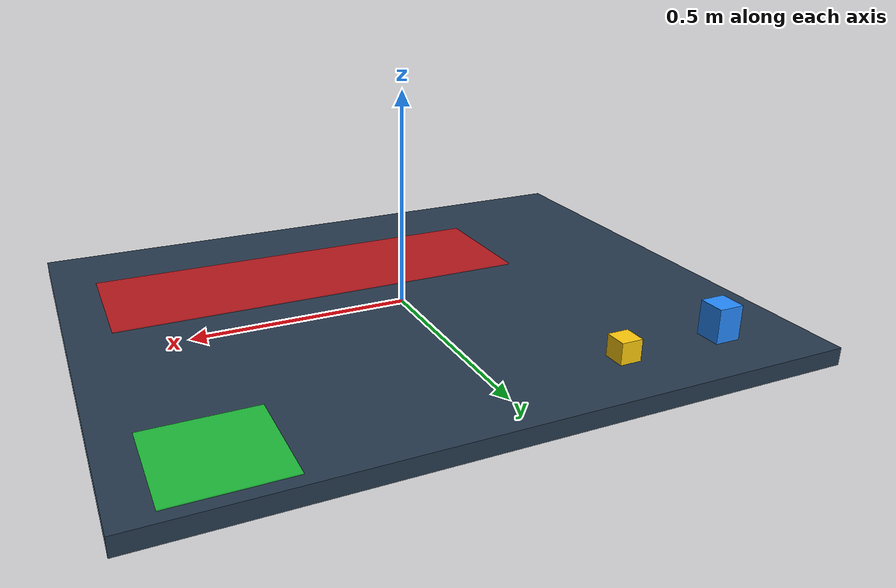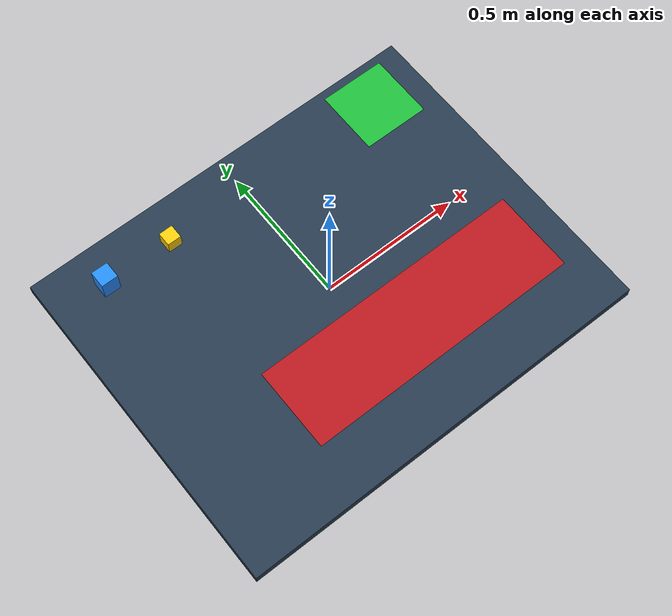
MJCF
<mujoco model="safety_gated_pusher">
  <option timestep="0.002" gravity="0 0 -9.81" />

  <default>
    <geom friction="1.0 0.005 0.0001" />
    <joint damping="1.0" />
  </default>

  <asset>
    <texture type="2d" name="grid" builtin="checker" rgb1="0.2 0.3 0.4" rgb2="0.1 0.15 0.2"
      width="512" height="512" />
    <material name="table_mat" texture="grid" texrepeat="4 4" reflectance="0.05" />
  </asset>

  <worldbody>
    <light pos="0 0 2.5" dir="0 0 -1" diffuse="1 1 1" specular="0.2 0.2 0.2" />
    <camera name="topdown" pos="0 0 2.2" euler="0 0 0" fovy="55" />
    <camera name="angled" pos="-1.0 -1.4 1.3" xyaxes="0.8 -0.6 0  0.3 0.5 0.8" />

    <!-- Table surface: group 1, collides with object only (not pusher) -->
    <geom name="table" type="box" size="0.75 0.6 0.02" pos="0 0 -0.02" material="table_mat"
      contype="1" conaffinity="4" />

    <geom name="goal_zone" type="box" size="0.12 0.12 0.001" pos="0.55 0.45 0.0011"
      rgba="0.15 0.95 0.25 0.75" contype="0" conaffinity="0" />

    <geom name="nogo_zone" type="box" size="0.5 0.15 0.001" pos="0.15 -0.25 0.0011"
      rgba="0.95 0.1 0.1 0.75" contype="0" conaffinity="0" />

    <!-- Pusher: slide-jointed paddle, position-controlled in x and y -->
    <body name="pusher" pos="-0.55 0.45 0.04">
      <joint name="pusher_x" type="slide" axis="1 0 0" range="-0.1 1.4" damping="8.0" />
      <joint name="pusher_y" type="slide" axis="0 1 0" range="-1.0 1.0" damping="8.0" />
      <geom name="pusher_geom" type="box" size="0.03 0.03 0.04" rgba="0.15 0.55 1.0 1" mass="2.0"
        contype="2" conaffinity="4" friction="0.02 0.005 0.0001" />
      <!-- Passive touch-sensor site: matches pusher_geom exactly, used only
           for read-only contact-force telemetry. No collision, no mass,
           no effect on dynamics -- purely observational. -->
      <site name="pusher_touch_site" type="box" size="0.03 0.03 0.04" rgba="0 0 0 0" />
    </body>

    <!-- Object: free box, the pushable item -->
    <body name="object" pos="-0.3 0.45 0.025">
      <joint name="object_free" type="free" />
      <geom name="object_geom" type="box" size="0.025 0.025 0.025" rgba="1.0 0.8 0.05 1" mass="0.3"
        contype="4" conaffinity="3" />
    </body>
  </worldbody>

  <actuator>
    <position name="act_x" joint="pusher_x" kp="400" />
    <position name="act_y" joint="pusher_y" kp="400" />
  </actuator>

  <sensor>
    <touch name="pusher_touch" site="pusher_touch_site" />
  </sensor>
</mujoco>
